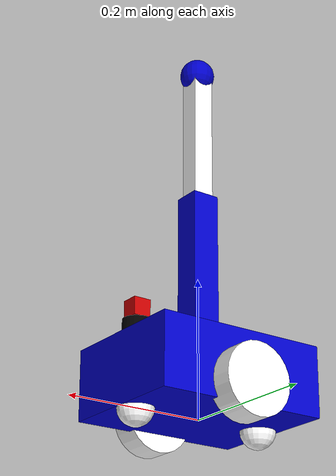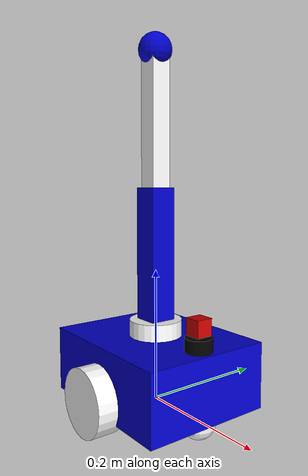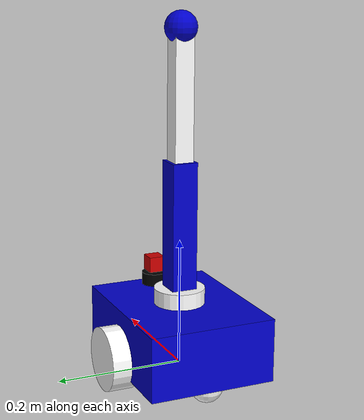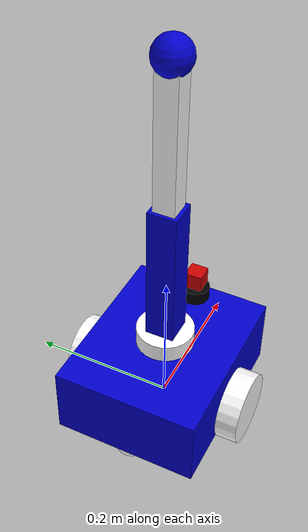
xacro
<?xml version="1.0"?>
<robot xmlns:xacro="http://www.ros.org/wiki/xacro" name="mobile_manipulator">

    <xacro:include filename="$(find my_robot_bringup)/urdf/my_robot.gazebo.xacro" />

    <material name="blue"><color rgba="0 0 0.8 1"/></material>
    <material name="white"><color rgba="1 1 1 1"/></material>
    <material name="black"><color rgba="0 0 0 1"/></material>
    <material name="red"><color rgba="0.8 0 0 1"/></material>

    <xacro:macro name="default_inertial" params="mass">
        <inertial>
            <mass value="${mass}" />
            <inertia ixx="0.01" ixy="0.0" ixz="0.0" iyy="0.01" iyz="0.0" izz="0.01" />
        </inertial>
    </xacro:macro>

    <link name="base_link">
        <visual>
            <geometry><box size="0.25 0.2 0.1"/></geometry>
            <material name="blue"/>
        </visual>
        <collision>
            <geometry><box size="0.25 0.2 0.1"/></geometry>
        </collision>
        <inertial>
            <origin xyz="0 0 0" rpy="0 0 0"/>
            <mass value="20.0"/>
            <inertia ixx="0.5" ixy="0.0" ixz="0.0" iyy="0.5" iyz="0.0" izz="0.5"/>
        </inertial>
    </link>

    <link name="base_footprint"/>
    <joint name="base_joint" type="fixed">
        <parent link="base_footprint"/>
        <child link="base_link"/>
        <origin xyz="0 0 0.05" rpy="0 0 0"/>
    </joint>

    <link name="left_wheel">
        <visual><geometry><cylinder radius="0.05" length="0.04"/></geometry><material name="white"/></visual>
        <collision><geometry><cylinder radius="0.05" length="0.04"/></geometry></collision>
        <xacro:default_inertial mass="2.0"/>
    </link>
    <joint name="left_wheel_joint" type="continuous">
        <parent link="base_link"/><child link="left_wheel"/>
        <origin xyz="0 0.11 -0.025" rpy="-1.57 0 0"/><axis xyz="0 0 1"/>
    </joint>

    <link name="right_wheel">
        <visual><geometry><cylinder radius="0.05" length="0.04"/></geometry><material name="white"/></visual>
        <collision><geometry><cylinder radius="0.05" length="0.04"/></geometry></collision>
        <xacro:default_inertial mass="2.0"/>
    </link>
    <joint name="right_wheel_joint" type="continuous">
        <parent link="base_link"/><child link="right_wheel"/>
        <origin xyz="0 -0.11 -0.025" rpy="-1.57 0 0"/><axis xyz="0 0 1"/>
    </joint>

    <link name="caster_wheel">
        <visual><geometry><sphere radius="0.025"/></geometry><material name="white"/></visual>
        <collision><geometry><sphere radius="0.025"/></geometry></collision>
        <xacro:default_inertial mass="0.5"/>
    </link>
    <joint name="caster_joint" type="fixed">
        <parent link="base_link"/>
        <child link="caster_wheel"/> <origin xyz="0.1 0 -0.05"/>
    </joint>

    <link name="back_caster_wheel">
        <visual><geometry><sphere radius="0.025"/></geometry><material name="white"/></visual>
        <collision><geometry><sphere radius="0.025"/></geometry></collision>
        <xacro:default_inertial mass="0.5"/>
    </link>
    <joint name="back_caster_joint" type="fixed">
        <parent link="base_link"/><child link="back_caster_wheel"/><origin xyz="-0.1 0 -0.05"/>
    </joint>

    <link name="arm_base">
        <visual>
            <geometry><cylinder radius="0.04" length="0.05"/></geometry>
            <material name="white"/>
        </visual>
        <collision>
            <geometry><cylinder radius="0.04" length="0.05"/></geometry>
        </collision>
        <xacro:default_inertial mass="0.5"/>
    </link>
    <joint name="arm_base_joint" type="revolute">
        <parent link="base_link"/>
        <child link="arm_base"/>
        <origin xyz="0 0 0.05" rpy="0 0 0"/> <axis xyz="0 0 1"/>
        <limit lower="-3.14" upper="3.14" effort="10.0" velocity="1.0"/>
        <dynamics damping="50.0" friction="10.0"/>
    </joint>

    <link name="arm_link1">
        <visual>
            <geometry><box size="0.04 0.04 0.2"/></geometry>
            <origin xyz="0 0 0.1" rpy="0 0 0"/> <material name="blue"/>
        </visual>
        <collision>
            <geometry><box size="0.04 0.04 0.2"/></geometry>
            <origin xyz="0 0 0.1" rpy="0 0 0"/>
        </collision>
        <xacro:default_inertial mass="0.3"/>
    </link>
    <joint name="shoulder_joint" type="revolute">
        <parent link="arm_base"/>
        <child link="arm_link1"/>
        <origin xyz="0 0 0.025" rpy="0 0 0"/>
        <axis xyz="0 1 0"/>
        <limit lower="-1.57" upper="1.57" effort="10.0" velocity="1.0"/>
    </joint>

    <link name="arm_link2">
        <visual>
            <geometry><box size="0.03 0.03 0.2"/></geometry>
            <origin xyz="0 0 0.1" rpy="0 0 0"/>
            <material name="white"/>
        </visual>
        <collision>
            <geometry><box size="0.03 0.03 0.2"/></geometry>
            <origin xyz="0 0 0.1" rpy="0 0 0"/>
        </collision>
        <xacro:default_inertial mass="0.2"/>
    </link>
    <joint name="elbow_joint" type="revolute">
        <parent link="arm_link1"/>
        <child link="arm_link2"/>
        <origin xyz="0 0 0.2" rpy="0 0 0"/> <axis xyz="0 1 0"/>
        <limit lower="-1.57" upper="1.57" effort="10.0" velocity="1.0"/>
    </joint>

    <link name="gripper">
        <visual>
            <geometry><sphere radius="0.025"/></geometry>
            <material name="blue"/>
        </visual>
        <collision>
            <geometry><sphere radius="0.025"/></geometry>
        </collision>
        <xacro:default_inertial mass="0.1"/>
    </link>
    <joint name="gripper_joint" type="fixed">
        <parent link="arm_link2"/>
        <child link="gripper"/>
        <origin xyz="0 0 0.2" rpy="0 0 0"/> </joint>

    <link name="lidar_link">
        <visual>
            <geometry><cylinder radius="0.02" length="0.02"/></geometry>
            <material name="black"/>
        </visual>
        <collision>
            <geometry><cylinder radius="0.02" length="0.02"/></geometry>
        </collision>
        <xacro:default_inertial mass="0.1"/>
    </link>
    <joint name="lidar_joint" type="fixed">
        <parent link="base_link"/>
        <child link="lidar_link"/>
        <origin xyz="0.1 0 0.06" rpy="0 0 0"/>
    </joint>

    <link name="camera_link">
        <visual>
            <geometry><box size="0.025 0.025 0.025"/></geometry>
            <material name="red"/>
        </visual>
        <collision>
            <geometry><box size="0.025 0.025 0.025"/></geometry>
        </collision>
        <xacro:default_inertial mass="0.05"/>
    </link>
    <joint name="camera_joint" type="fixed">
        <parent link="lidar_link"/>
        <child link="camera_link"/>
        <origin xyz="0 0 0.025" rpy="0 0 0"/> </joint>

    <ros2_control name="GazeboSystem" type="system">
        <hardware>
            <plugin>gazebo_ros2_control/GazeboSystem</plugin>
        </hardware>
        <joint name="arm_base_joint">
            <command_interface name="position"/>
            <state_interface name="position"/>
            <state_interface name="velocity"/>
        </joint>
        <joint name="shoulder_joint">
            <command_interface name="position"/>
            <state_interface name="position"/>
            <state_interface name="velocity"/>
        </joint>
        <joint name="elbow_joint">
            <command_interface name="position"/>
            <state_interface name="position"/>
            <state_interface name="velocity"/>
        </joint>
    </ros2_control>

</robot>
